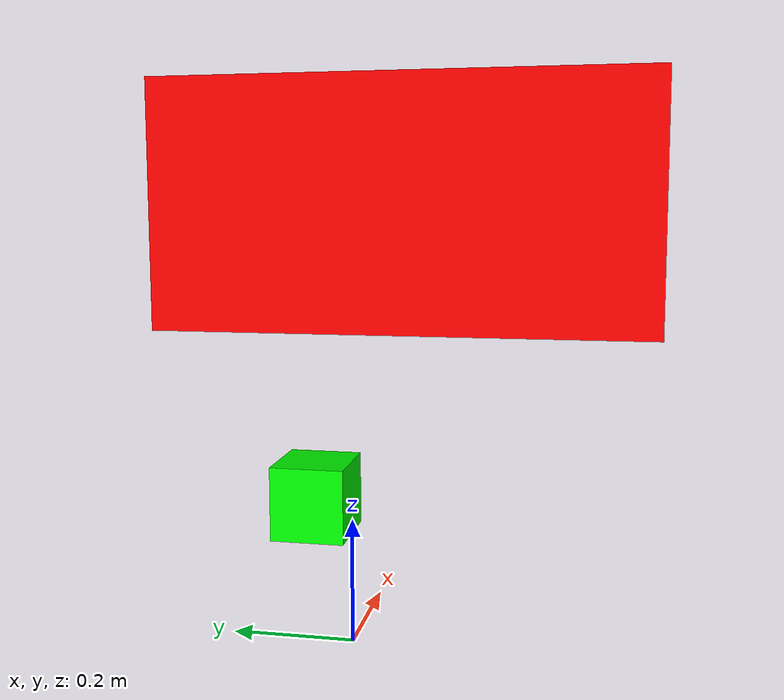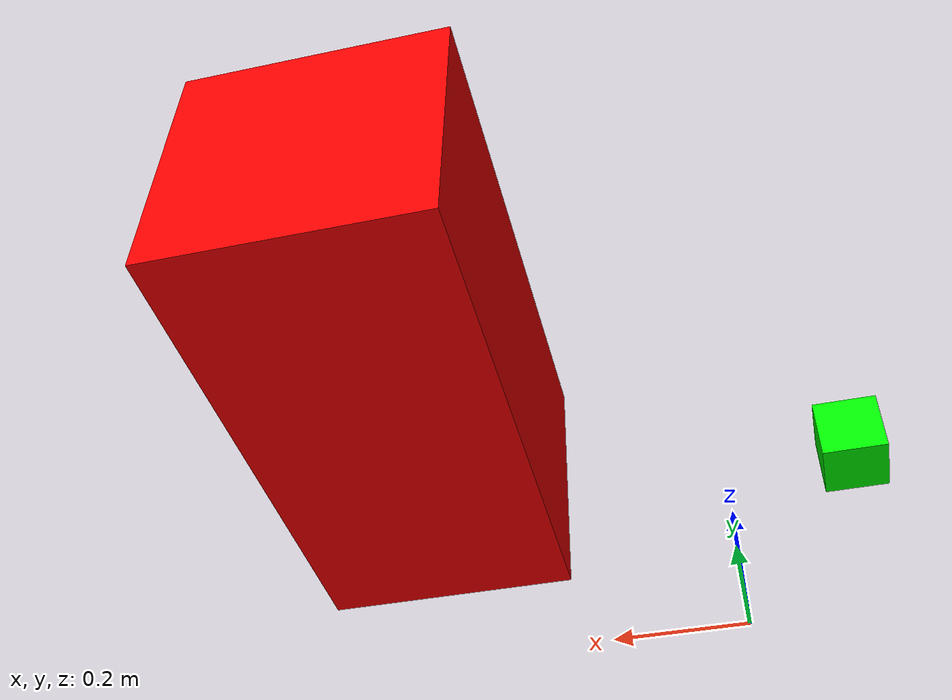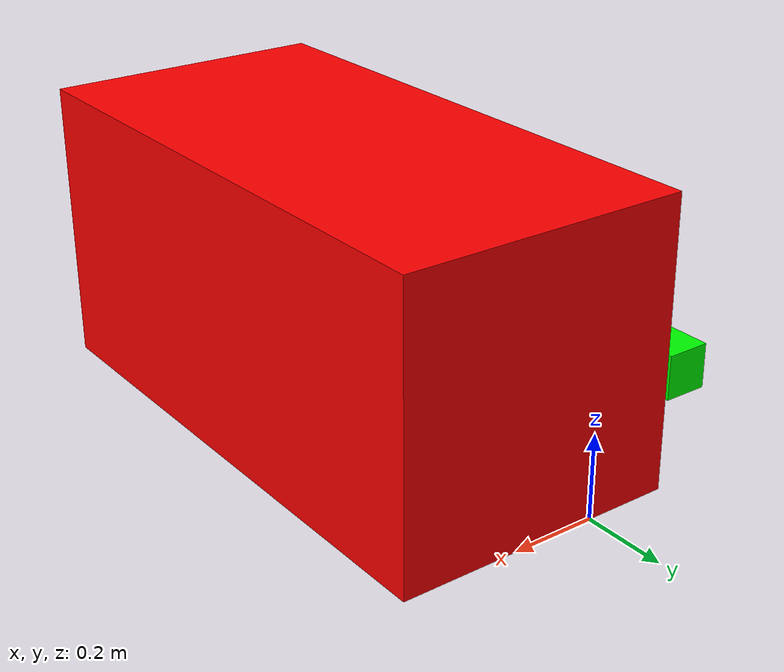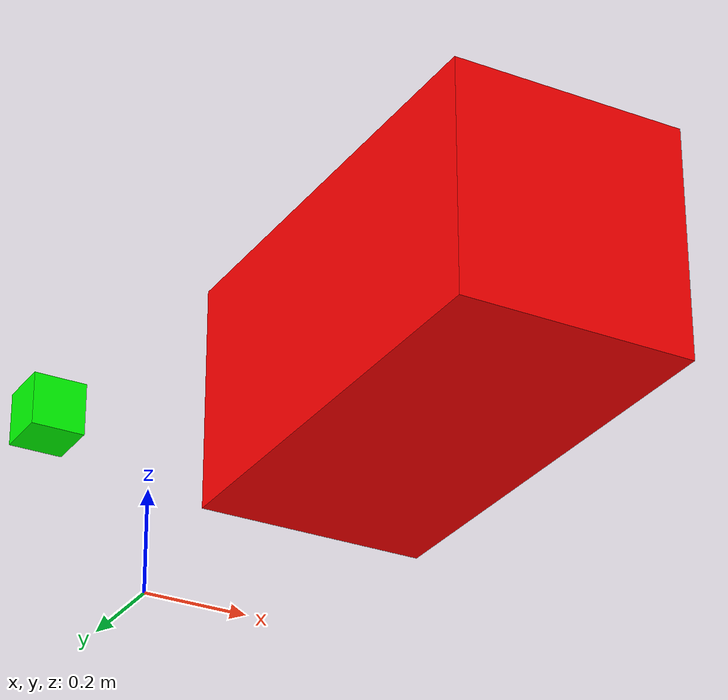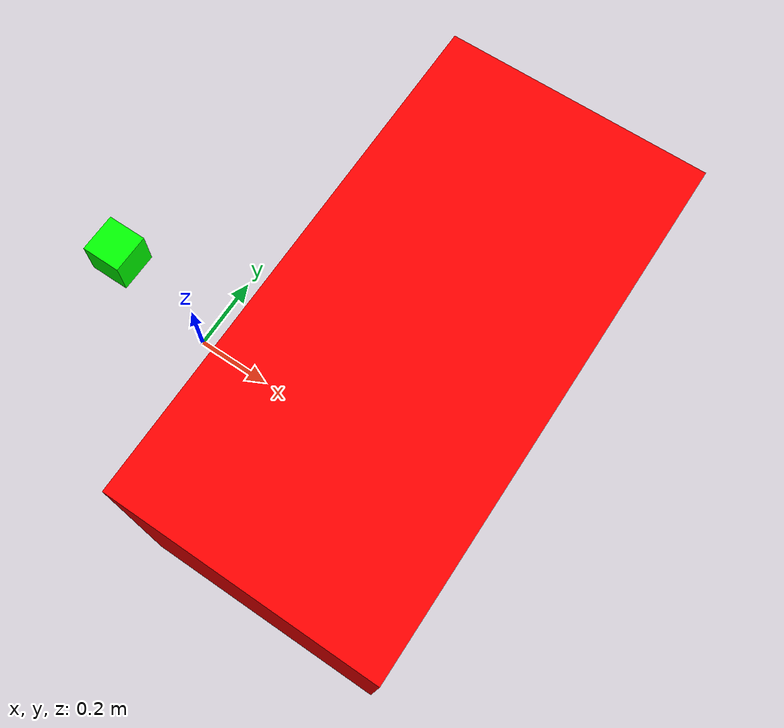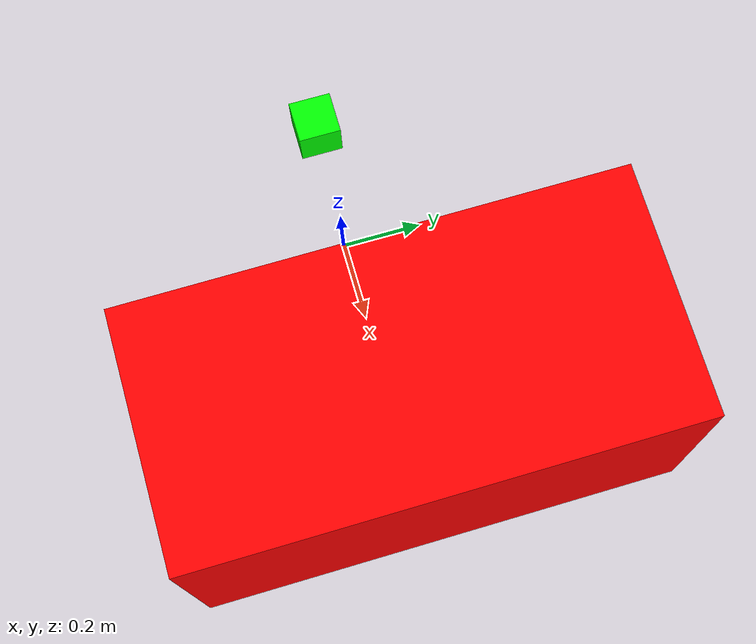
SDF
<?xml version="1.0" ?>
<sdf version="1.7">
  <model name='top_model'>

    <link name="top">
      <pose>0.6 0 0.7 0 0 0</pose>
      <collision name="top_collision">
        <geometry>
          <box>
            <size>0.5 1 0.5</size>
          </box>
        </geometry>
      </collision>
      <visual name="top_visual">
        <geometry>
          <box>
            <size>0.5 1 0.5</size>
          </box>
        </geometry>
        <material>
          <ambient>1 0 0 1</ambient>
          <diffuse>1 0 0 1</diffuse>
          <specular>1 0 0 1</specular>
        </material>
      </visual>
    </link>

    <include>
      <uri>top_camera</uri>
      <pose relative_to="top">0 0 0 0 0 0</pose>
    </include>

    <joint name="top_to_camera" type="fixed">
      <parent>top</parent>
      <child>top_camera::top_camera_link</child>
    </joint>

  </model>
</sdf>

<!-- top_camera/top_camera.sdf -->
<sdf version="1.7">
  <model name='top_camera'>

    <link name="top_camera_link">
      <visual name="camera_visual">
        <pose>-0.2 0 0.3 0 0 3.14</pose>
        <geometry>
          <box>
            <size>0.1 0.1 0.1</size>
          </box>
        </geometry>
        <material>
          <ambient>0 1 0 1</ambient>
          <diffuse>0 1 0 1</diffuse>
          <specular>0.5 0.5 0.5 1</specular>
        </material>
      </visual>

      <sensor name="camera" type="camera">
        <pose>-0.2 0 0.3 0 0.0 0</pose>
        <camera>
          <horizontal_fov>1.047</horizontal_fov>
          <image>
            <width>320</width>
            <height>240</height>
          </image>
          <clip>
            <near>0.1</near>
            <far>100</far>
          </clip>
        </camera>
        <always_on>1</always_on>
        <update_rate>30</update_rate>
        <visualize>true</visualize>
        <topic>top/camera</topic>
      </sensor>
    </link>
  </model>
</sdf>
